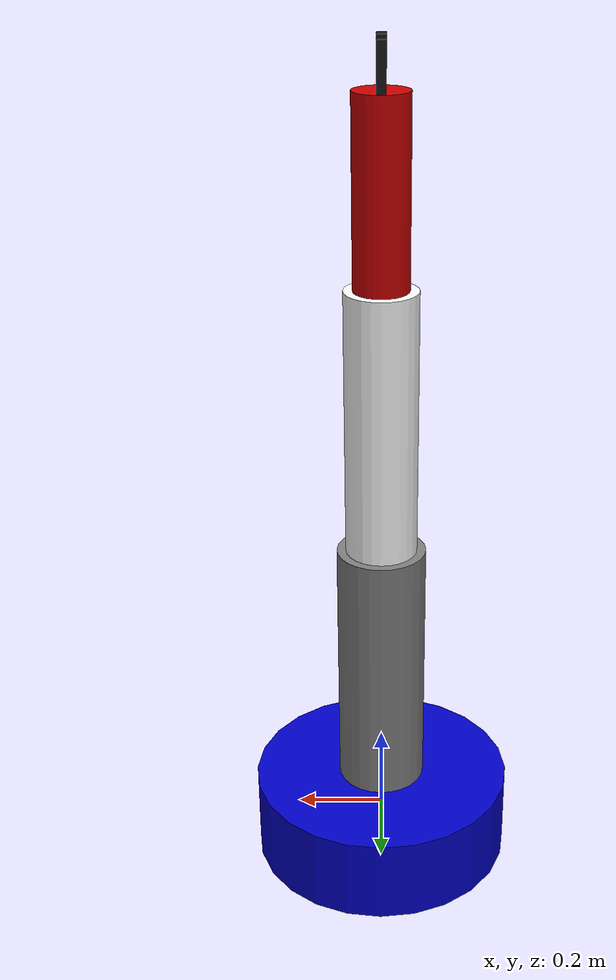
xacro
<?xml version="1.0"?>
<robot xmlns:xacro="http://www.ros.org/wiki/xacro" name="rrr_robot_arm_with_gripper">
    <xacro:arg name="initial_positions_file" default="initial_positions.yaml" />

    <!-- Import rrr_robot_arm_with_gripper urdf file -->
    <xacro:include filename="$(find robot)/urdf/description_test.urdf" />

    <!-- Import control_xacro -->
    <xacro:include filename="rrr_robot_arm_with_gripper.ros2_control.xacro" />

    <xacro:rrr_robot_arm_with_gripper_ros2_control name="FakeSystem" initial_positions_file="$(arg initial_positions_file)"/>

</robot>

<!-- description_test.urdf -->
<robot name="rrr_robot_arm_with_gripper">

    <!-- ✅ world link แก้ KDL warning -->
    <link name="world"/>

    <joint name="world_to_base" type="fixed">
        <parent link="world"/>
        <child link="base_link"/>
        <origin xyz="0 0 0" rpy="0 0 0"/>
    </joint>

    <link name="base_link">
        <visual>
            <geometry>
                <cylinder length="0.2" radius="0.3"/>
            </geometry>
            <material name="blue">
                <color rgba="0.0 0.0 0.8 1.0"/>
            </material>
        </visual>
        <!-- ✅ collision -->
        <collision>
            <geometry>
                <cylinder length="0.2" radius="0.3"/>
            </geometry>
        </collision>
        <inertial>
            <origin xyz="0 0 0" rpy="0 0 0"/>
            <mass value="5.0"/>
            <inertia ixx="0.129" ixy="0.0" ixz="0.0" iyy="0.129" iyz="0.0" izz="0.225"/>
        </inertial>
    </link>

    <link name="rod1_link">
        <visual>
            <origin xyz="0 0 0.3" rpy="0 0 0"/>
            <geometry>
                <cylinder length="0.6" radius="0.1"/>
            </geometry>
            <material name="grey">
                <color rgba="0.5 0.5 0.5 1.0"/>
            </material>
        </visual>
        <!-- ✅ collision -->
        <collision>
            <origin xyz="0 0 0.3" rpy="0 0 0"/>
            <geometry>
                <cylinder length="0.6" radius="0.1"/>
            </geometry>
        </collision>
        <inertial>
            <origin xyz="0 0 0.3" rpy="0 0 0"/>
            <mass value="1.2"/>
            <inertia ixx="0.039" ixy="0.0" ixz="0.0" iyy="0.039" iyz="0.0" izz="0.006"/>
        </inertial>
    </link>

    <link name="rod2-link">
        <visual>
            <origin xyz="0 0 0.3" rpy="0 0 0"/>
            <geometry>
                <cylinder length="0.6" radius="0.08"/>
            </geometry>
            <material name="white">
                <color rgba="1.0 1.0 1.0 1.0"/>
            </material>
        </visual>
        <!-- ✅ collision -->
        <collision>
            <origin xyz="0 0 0.3" rpy="0 0 0"/>
            <geometry>
                <cylinder length="0.6" radius="0.08"/>
            </geometry>
        </collision>
        <inertial>
            <origin xyz="0 0 0.3" rpy="0 0 0"/>
            <mass value="1.2"/>
            <inertia ixx="0.0379" ixy="0.0" ixz="0.0" iyy="0.0379" iyz="0.0" izz="0.00384"/>
        </inertial>
    </link>

    <link name="rod3-link">
        <visual>
            <origin xyz="0 0 0.2" rpy="0 0 0"/>
            <geometry>
                <cylinder length="0.4" radius="0.06"/>
            </geometry>
            <material name="red">
                <color rgba="0.8 0.0 0.0 1.0"/>
            </material>
        </visual>
        <!-- ✅ collision -->
        <collision>
            <origin xyz="0 0 0.2" rpy="0 0 0"/>
            <geometry>
                <cylinder length="0.4" radius="0.06"/>
            </geometry>
        </collision>
        <inertial>
            <origin xyz="0 0 0.2" rpy="0 0 0"/>
            <mass value="0.8"/>
            <inertia ixx="0.0113" ixy="0.0" ixz="0.0" iyy="0.0113" iyz="0.0" izz="0.00144"/>
        </inertial>
    </link>

    <link name="left_finger">
        <visual>
            <origin xyz="0 0 0.05" rpy="0 0 0"/>
            <geometry>
                <box size="0.02 0.03 0.1"/>
            </geometry>
            <material name="black">
                <color rgba="0.1 0.1 0.1 1.0"/>
            </material>
        </visual>
        <!-- ✅ collision -->
        <collision>
            <origin xyz="0 0 0.05" rpy="0 0 0"/>
            <geometry>
                <box size="0.02 0.03 0.1"/>
            </geometry>
        </collision>
        <inertial>
            <origin xyz="0 0 0.05" rpy="0 0 0"/>
            <mass value="0.1"/>
            <inertia ixx="0.0000908" ixy="0.0" ixz="0.0" iyy="0.0000867" iyz="0.0" izz="0.0000108"/>
        </inertial>
    </link>

    <link name="right_finger">
        <visual>
            <origin xyz="0 0 0.05" rpy="0 0 0"/>
            <geometry>
                <box size="0.02 0.03 0.1"/>
            </geometry>
            <material name="black">
                <color rgba="0.1 0.1 0.1 1.0"/>
            </material>
        </visual>
        <!-- ✅ collision -->
        <collision>
            <origin xyz="0 0 0.05" rpy="0 0 0"/>
            <geometry>
                <box size="0.02 0.03 0.1"/>
            </geometry>
        </collision>
        <inertial>
            <origin xyz="0 0 0.05" rpy="0 0 0"/>
            <mass value="0.1"/>
            <inertia ixx="0.0000908" ixy="0.0" ixz="0.0" iyy="0.0000867" iyz="0.0" izz="0.0000108"/>
        </inertial>
    </link>

    <joint name="base_to_rod1" type="revolute">
        <parent link="base_link"/>
        <child link="rod1_link"/>
        <origin xyz="0 0 0.1" rpy="0 0 0"/>
        <axis xyz="0 0 1"/>
        <limit lower="-3.14" upper="3.14" effort="10.0" velocity="1.0"/>
    </joint>

    <joint name="rod1_to_rod2" type="revolute">
        <parent link="rod1_link"/>
        <child link="rod2-link"/>
        <origin xyz="0 0 0.6" rpy="0 0 0"/>
        <axis xyz="0 1 0"/>
        <limit lower="-2.0" upper="2.0" effort="10.0" velocity="1.0"/>
    </joint>

    <joint name="rod2_to_rod3" type="revolute">
        <parent link="rod2-link"/>
        <child link="rod3-link"/>
        <origin xyz="0 0 0.6" rpy="0 0 0"/>
        <axis xyz="0 1 0"/>
        <limit lower="-2.0" upper="2.0" effort="10.0" velocity="1.0"/>
    </joint>

    <joint name="rod3_to_left_finger" type="prismatic">
        <parent link="rod3-link"/>
        <child link="left_finger"/>
        <origin xyz="0 -0.04 0.4" rpy="0 0 0"/>
        <axis xyz="0 1 0"/>
        <limit lower="-0.04" upper="0.0" effort="10.0" velocity="1.0"/>
    </joint>

    <joint name="rod3_to_right_finger" type="prismatic">
        <parent link="rod3-link"/>
        <child link="right_finger"/>
        <origin xyz="0 0.04 0.4" rpy="0 0 0"/>
        <axis xyz="0 1 0"/>
        <limit lower="0.0" upper="0.04" effort="10.0" velocity="1.0"/>
    </joint>

    <!-- ✅ อัปเดต plugin เป็นเวอร์ชันใหม่ gz_ros2_control -->
    <gazebo>
        <plugin filename="gz_ros2_control-system" name="gz_ros2_control::GazeboSimROS2ControlPlugin">
            <parameters>$(find motion_robot_moveit_config)/config/ros2_controllers.yaml</parameters>
            <controller_manager_name>controller_manager</controller_manager_name>
        </plugin>
    </gazebo>

</robot>
